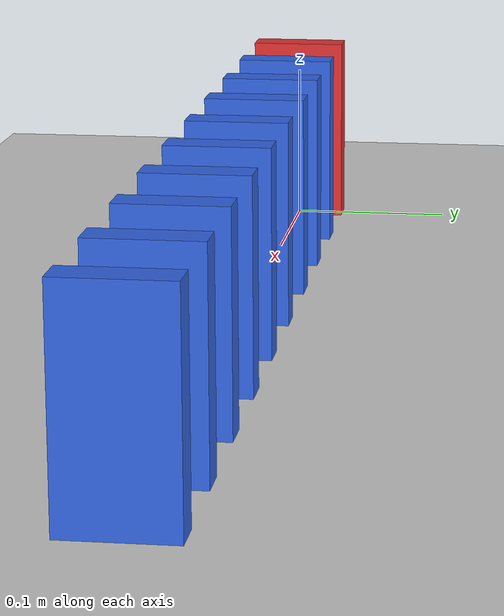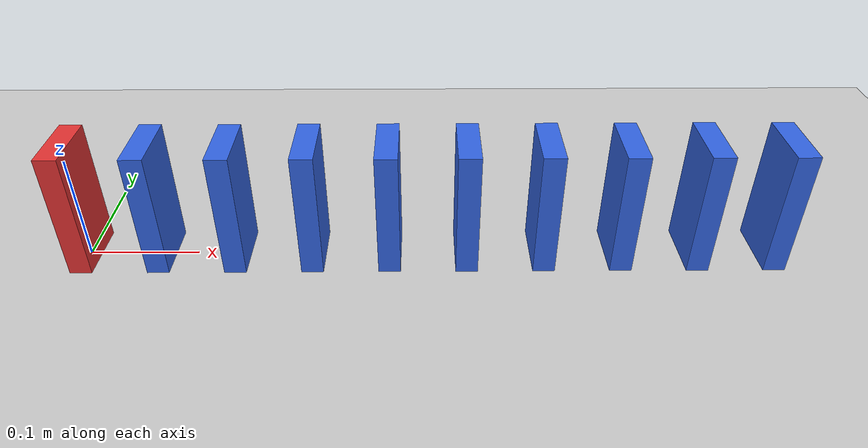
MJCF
<mujoco model="domino_chain">
  <option timestep="0.002" gravity="0 0 -9.81"/>
  <worldbody>
    <light name="sun" pos="0.3 -0.5 1.5" dir="0 0.3 -1" directional="true"/>
    <geom name="floor" type="plane" size="2 2 0.1" rgba="0.8 0.8 0.8 1" friction="0.8 0.005 0.0001"/>
    <body name="domino1" pos="0.00 0 0.06">
      <freejoint name="j1"/>
      <geom name="d1" type="box" size="0.01 0.03 0.06" density="1000" friction="0.6 0.005 0.0001" rgba="0.9 0.2 0.2 1"/>
    </body>
    <body name="domino2" pos="0.07 0 0.06">
      <freejoint name="j2"/>
      <geom name="d2" type="box" size="0.01 0.03 0.06" density="1000" friction="0.6 0.005 0.0001" rgba="0.2 0.4 0.9 1"/>
    </body>
    <body name="domino3" pos="0.14 0 0.06">
      <freejoint name="j3"/>
      <geom name="d3" type="box" size="0.01 0.03 0.06" density="1000" friction="0.6 0.005 0.0001" rgba="0.2 0.4 0.9 1"/>
    </body>
    <body name="domino4" pos="0.21 0 0.06">
      <freejoint name="j4"/>
      <geom name="d4" type="box" size="0.01 0.03 0.06" density="1000" friction="0.6 0.005 0.0001" rgba="0.2 0.4 0.9 1"/>
    </body>
    <body name="domino5" pos="0.28 0 0.06">
      <freejoint name="j5"/>
      <geom name="d5" type="box" size="0.01 0.03 0.06" density="1000" friction="0.6 0.005 0.0001" rgba="0.2 0.4 0.9 1"/>
    </body>
    <body name="domino6" pos="0.35 0 0.06">
      <freejoint name="j6"/>
      <geom name="d6" type="box" size="0.01 0.03 0.06" density="1000" friction="0.6 0.005 0.0001" rgba="0.2 0.4 0.9 1"/>
    </body>
    <body name="domino7" pos="0.42 0 0.06">
      <freejoint name="j7"/>
      <geom name="d7" type="box" size="0.01 0.03 0.06" density="1000" friction="0.6 0.005 0.0001" rgba="0.2 0.4 0.9 1"/>
    </body>
    <body name="domino8" pos="0.49 0 0.06">
      <freejoint name="j8"/>
      <geom name="d8" type="box" size="0.01 0.03 0.06" density="1000" friction="0.6 0.005 0.0001" rgba="0.2 0.4 0.9 1"/>
    </body>
    <body name="domino9" pos="0.56 0 0.06">
      <freejoint name="j9"/>
      <geom name="d9" type="box" size="0.01 0.03 0.06" density="1000" friction="0.6 0.005 0.0001" rgba="0.2 0.4 0.9 1"/>
    </body>
    <body name="domino10" pos="0.63 0 0.06">
      <freejoint name="j10"/>
      <geom name="d10" type="box" size="0.01 0.03 0.06" density="1000" friction="0.6 0.005 0.0001" rgba="0.2 0.4 0.9 1"/>
    </body>
  </worldbody>
  <keyframe>
    <key name="start" qvel="0.12 0 0.02 0 2 0  0 0 0 0 0 0  0 0 0 0 0 0  0 0 0 0 0 0  0 0 0 0 0 0  0 0 0 0 0 0  0 0 0 0 0 0  0 0 0 0 0 0  0 0 0 0 0 0  0 0 0 0 0 0"/>
  </keyframe>
</mujoco>
